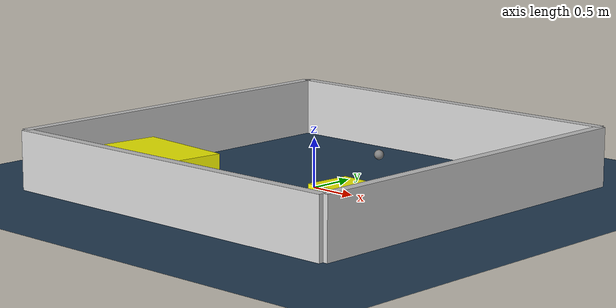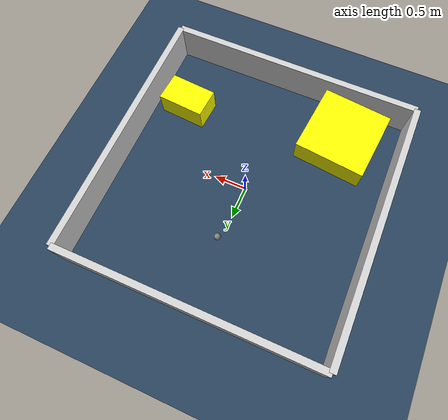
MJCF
<?xml version="1.0" ?>
<mujoco model="generated_environment">
  <option timestep="0.01" integrator="RK4" cone="elliptic"/>
  <default>
    <geom density="1"/>
  </default>
  <asset>
    <texture builtin="gradient" height="3072" rgb1="0.3 0.5 0.7" rgb2="0 0 0" type="skybox" width="512"/>
    <texture builtin="checker" height="300" mark="edge" markrgb="0.8 0.8 0.8" name="groundplane" rgb1="0.2 0.3 0.4" rgb2="0.1 0.2 0.3" type="2d" width="300"/>
    <material name="groundplane" reflectance="0.2" texrepeat="5 5" texture="groundplane" texuniform="true"/>
    <material name="robot" rgba="0.0 1.0 0.0 1"/>
  </asset>
  <worldbody>
    <light dir="0 0 -1" directional="true" pos="0 0 1.5"/>
    <geom condim="4" friction="1.0 0.005 0.001" material="groundplane" name="floor" size="0 0 0.05" type="plane"/>
    <body name="walls">
      <geom name="wall_1" condim="4" pos="-2.0 0.0 0.3" rgba="0.800000011920929 0.800000011920929 0.800000011920929 1.0" size="0.05 2.0 0.3" type="box"/>
      <geom name="wall_2" condim="4" pos="2.0 0.0 0.3" rgba="0.800000011920929 0.800000011920929 0.800000011920929 1.0" size="0.05 2.0 0.3" type="box"/>
      <geom name="wall_3" condim="4" pos="0.0 -2.0 0.3" rgba="0.800000011920929 0.800000011920929 0.800000011920929 1.0" size="2.0 0.05 0.3" type="box"/>
      <geom name="wall_4" condim="4" pos="0.0 2.0 0.3" rgba="0.800000011920929 0.800000011920929 0.800000011920929 1.0" size="2.0 0.05 0.3" type="box"/>
    </body>
    <body name="robot">
      <joint name="joint_x" type="slide" pos="0 0 0" axis="1 0 0"/>
      <joint name="joint_y" type="slide" pos="0 0 0" axis="0 1 0"/>
      <geom name="robot" type="sphere" pos="0.04524280755659449 0.9094310165578339 0.2" size="0.05" mass="5." friction="1.0 0.005 0.0001" condim="4"/>
      <site name="sensor_ball"/>
    </body>
    <body name="obstacle_1_movable">
      <geom name="obstacle_1_movable" condim="4" pos="-1.085735754988356 -1.3277544987058432 0.2" euler="0 0 263.95177732849027" friction="1.0 0.005 0.001" rgba="1 1 0 1" size="0.5590649374005257 0.5481593924366603 0.2" type="box" mass="0.1"/>
      <joint type="free"/>
    </body>
    <body name="obstacle_2_movable">
      <geom name="obstacle_2_movable" condim="4" pos="1.4276778795267613 -0.9766920266414902 0.2" euler="0 0 175.87383095245315" friction="1.0 0.005 0.001" rgba="1 1 0 1" size="0.3664561260843775 0.23031046730205704 0.2" type="box" mass="0.1"/>
      <joint type="free"/>
    </body>
  </worldbody>
  <actuator>
    <motor name="actuator_x" joint="joint_x" gear="1" ctrlrange="-1 1"/>
    <motor name="actuator_y" joint="joint_y" gear="1" ctrlrange="-1 1"/>
  </actuator>
</mujoco>
